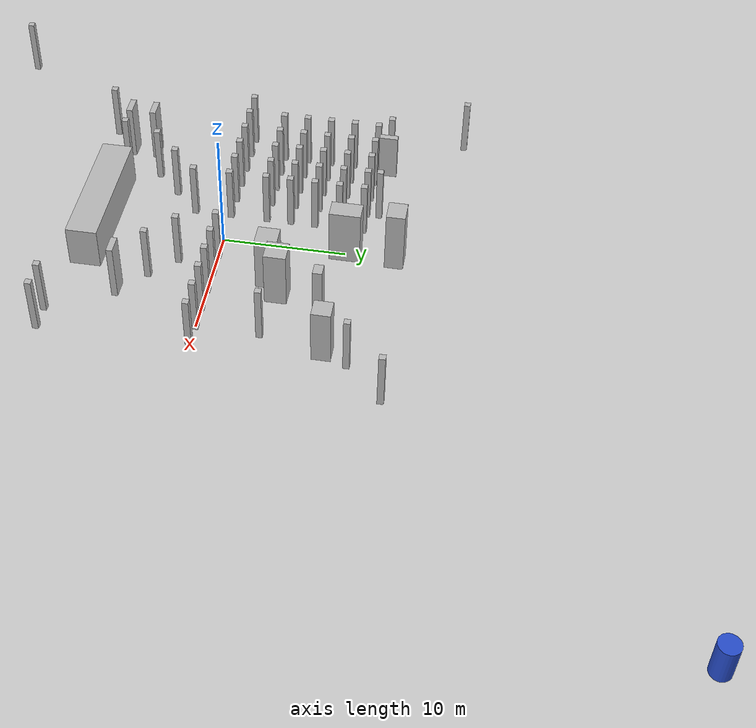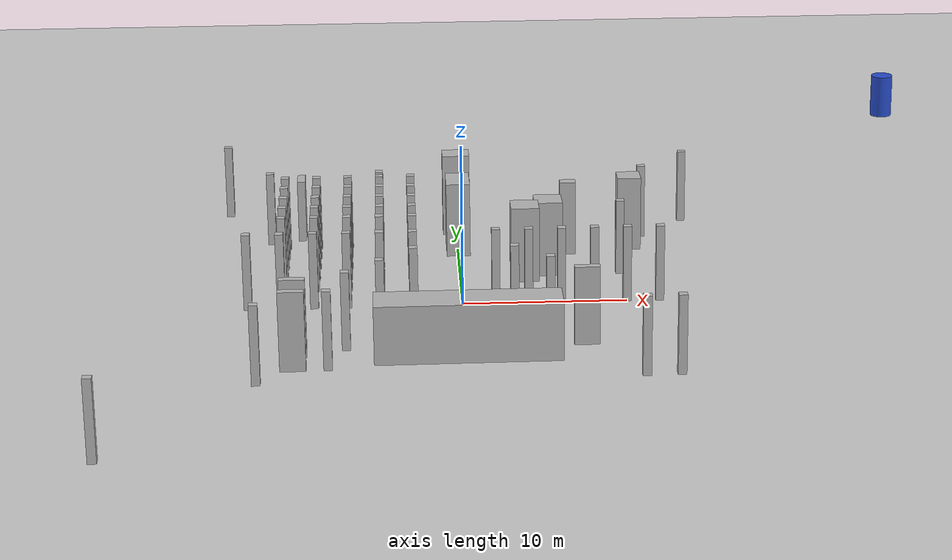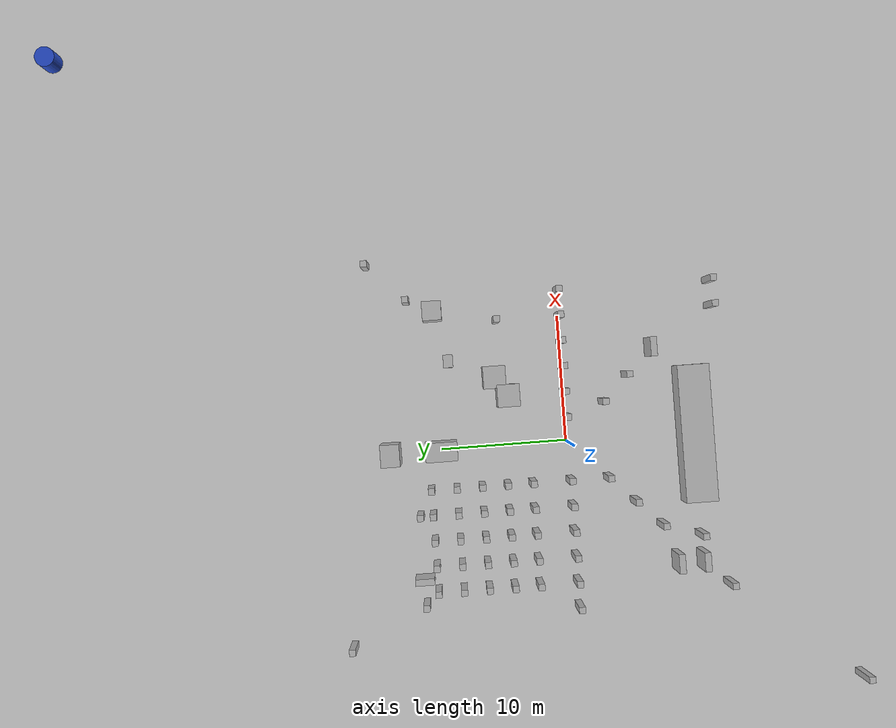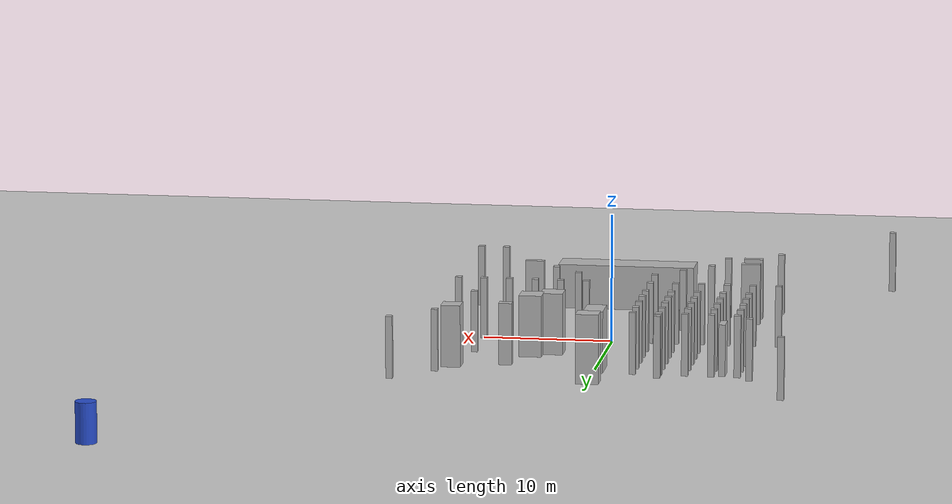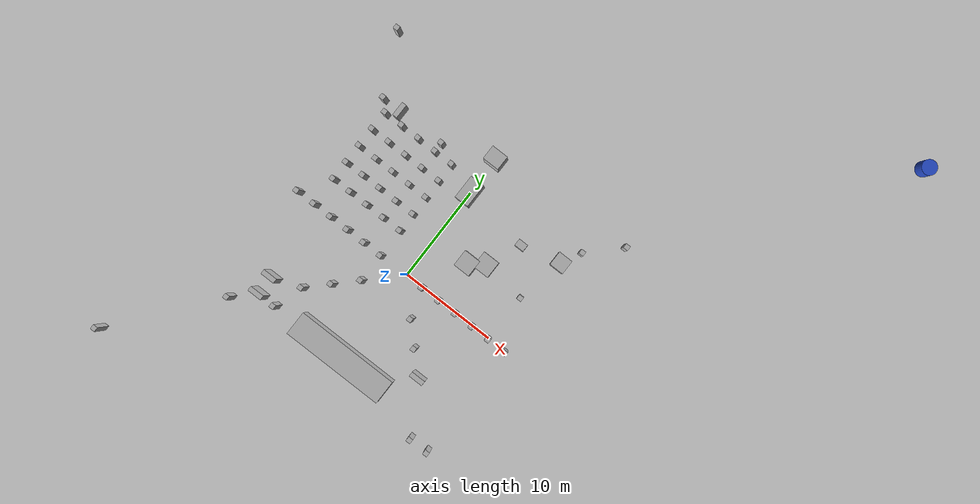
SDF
<sdf version="1.5">
 <world name="default">
  <include><uri>model://sun</uri></include>
  <include><uri>model://ground_plane</uri></include>
  <model name="box0">
   <pose>4.0 4.5 2.4 0 0 0</pose>
   <link name="link">
    <collision name="collision"><geometry><box><size>1.75 1.75 4.8</size></box></geometry></collision>
    <visual name="visual"><geometry><box><size>1.75 1.75 4.8</size></box></geometry></visual>
   </link>
  </model>
  <model name="box1">
   <pose>5.5 5.5 2.4 0 0 0</pose>
   <link name="link">
    <collision name="collision"><geometry><box><size>1.75 1.75 4.8</size></box></geometry></collision>
    <visual name="visual"><geometry><box><size>1.75 1.75 4.8</size></box></geometry></visual>
   </link>
  </model>
  <model name="box2">
   <pose>7.0 9.0 2.4 0 0 0</pose>
   <link name="link">
    <collision name="collision"><geometry><box><size>1.0 0.75 4.8</size></box></geometry></collision>
    <visual name="visual"><geometry><box><size>1.0 0.75 4.8</size></box></geometry></visual>
   </link>
  </model>
  <model name="box3">
   <pose>11.00 10.00 2.4 0 0 0</pose>
   <link name="link">
    <collision name="collision"><geometry><box><size>1.5 1.5 4.8</size></box></geometry></collision>
    <visual name="visual"><geometry><box><size>1.5 1.5 4.8</size></box></geometry></visual>
   </link>
  </model>
  <model name="box4">
   <pose>12.00 12.00 2.4 0 0 0</pose>
   <link name="link">
    <collision name="collision"><geometry><box><size>0.5 0.5 4.8</size></box></geometry></collision>
    <visual name="visual"><geometry><box><size>0.5 0.5 4.8</size></box></geometry></visual>
   </link>
  </model>
  <model name="box5">
   <pose>-12.00 -12.00 2.4 0 0 0</pose>
   <link name="link">
    <collision name="collision"><geometry><box><size>0.5 0.5 4.8</size></box></geometry></collision>
    <visual name="visual"><geometry><box><size>0.5 0.5 4.8</size></box></geometry></visual>
   </link>
  </model>
  <model name="box6">
   <pose>-12.00 12.00 2.4 0 0 0</pose>
   <link name="link">
    <collision name="collision"><geometry><box><size>0.5 0.5 4.8</size></box></geometry></collision>
    <visual name="visual"><geometry><box><size>0.5 0.5 4.8</size></box></geometry></visual>
   </link>
  </model>
  <model name="box7">
   <pose>12.00 -12.00 2.4 0 0 0</pose>
   <link name="link">
    <collision name="collision"><geometry><box><size>0.5 0.5 4.8</size></box></geometry></collision>
    <visual name="visual"><geometry><box><size>0.5 0.5 4.8</size></box></geometry></visual>
   </link>
  </model>
  <model name="box8">
   <pose>-5.00 12.00 2.4 0 0 0</pose>
   <link name="link">
    <collision name="collision"><geometry><box><size>0.5 0.5 4.8</size></box></geometry></collision>
    <visual name="visual"><geometry><box><size>0.5 0.5 4.8</size></box></geometry></visual>
   </link>
  </model>
  <model name="box9">
   <pose>15.00 15.00 2.4 0 0 0</pose>
   <link name="link">
    <collision name="collision"><geometry><box><size>0.5 0.5 4.8</size></box></geometry></collision>
    <visual name="visual"><geometry><box><size>0.5 0.5 4.8</size></box></geometry></visual>
   </link>
  </model>
  <model name="box10">
   <pose>10.00 -12.00 2.4 0 0 0</pose>
   <link name="link">
    <collision name="collision"><geometry><box><size>0.5 0.5 4.8</size></box></geometry></collision>
    <visual name="visual"><geometry><box><size>0.5 0.5 4.8</size></box></geometry></visual>
   </link>
  </model>
  <model name="box11">
   <pose>7.00 -7.00 2.4 0 0 0</pose>
   <link name="link">
    <collision name="collision"><geometry><box><size>1.5 0.5 4.8</size></box></geometry></collision>
    <visual name="visual"><geometry><box><size>1.5 0.5 4.8</size></box></geometry></visual>
   </link>
  </model>
  <model name="box12">
   <pose>-10.00 12.00 2.4 0 0 0</pose>
   <link name="link">
    <collision name="collision"><geometry><box><size>0.5 1.5 4.0</size></box></geometry></collision>
    <visual name="visual"><geometry><box><size>0.5 1.5 4.0</size></box></geometry></visual>
   </link>
  </model>
  <model name="box13">
   <pose>10.00 5.00 2.4 0 0 0</pose>
   <link name="link">
    <collision name="collision"><geometry><box><size>0.5 0.5 4.8</size></box></geometry></collision>
    <visual name="visual"><geometry><box><size>0.5 0.5 4.8</size></box></geometry></visual>
   </link>
  </model>
  <model name="box14">
   <pose>-20.00 -22.00 2.4 0 0 0</pose>
   <link name="link">
    <collision name="collision"><geometry><box><size>0.5 0.5 4.8</size></box></geometry></collision>
    <visual name="visual"><geometry><box><size>0.5 0.5 4.8</size></box></geometry></visual>
   </link>
  </model>
  <model name="box15">
   <pose>-15.00 18.00 2.4 0 0 0</pose>
   <link name="link">
    <collision name="collision"><geometry><box><size>0.5 0.5 4.8</size></box></geometry></collision>
    <visual name="visual"><geometry><box><size>0.5 0.5 4.8</size></box></geometry></visual>
   </link>
  </model>
  <model name="box16">
   <pose>2.00 0.00 2.4 0 0 0</pose>
   <link name="link">
    <collision name="collision"><geometry><box><size>0.5 0.5 4.8</size></box></geometry></collision>
    <visual name="visual"><geometry><box><size>0.5 0.5 4.8</size></box></geometry></visual>
   </link>
  </model>
  <model name="box17">
   <pose>4.00 0.00 2.4 0 0 0</pose>
   <link name="link">
    <collision name="collision"><geometry><box><size>0.5 0.5 4.8</size></box></geometry></collision>
    <visual name="visual"><geometry><box><size>0.5 0.5 4.8</size></box></geometry></visual>
   </link>
  </model>
  <model name="box18">
   <pose>6.00 0.00 2.4 0 0 0</pose>
   <link name="link">
    <collision name="collision"><geometry><box><size>0.5 0.5 4.8</size></box></geometry></collision>
    <visual name="visual"><geometry><box><size>0.5 0.5 4.8</size></box></geometry></visual>
   </link>
  </model>
  <model name="box19">
   <pose>8.00 0.00 2.4 0 0 0</pose>
   <link name="link">
    <collision name="collision"><geometry><box><size>0.5 0.5 4.8</size></box></geometry></collision>
    <visual name="visual"><geometry><box><size>0.5 0.5 4.8</size></box></geometry></visual>
   </link>
  </model>
  <model name="box20">
   <pose>10.00 0.00 2.4 0 0 0</pose>
   <link name="link">
    <collision name="collision"><geometry><box><size>0.5 0.5 4.8</size></box></geometry></collision>
    <visual name="visual"><geometry><box><size>0.5 0.5 4.8</size></box></geometry></visual>
   </link>
  </model>
  <model name="box21">
   <pose>12.00 0.00 2.4 0 0 0</pose>
   <link name="link">
    <collision name="collision"><geometry><box><size>0.5 0.5 4.8</size></box></geometry></collision>
    <visual name="visual"><geometry><box><size>0.5 0.5 4.8</size></box></geometry></visual>
   </link>
  </model>
  <model name="box22">
   <pose>-10.00 -10.00 2.4 0 0 0</pose>
   <link name="link">
    <collision name="collision"><geometry><box><size>1.5 0.5 4.8</size></box></geometry></collision>
    <visual name="visual"><geometry><box><size>1.5 0.5 4.8</size></box></geometry></visual>
   </link>
  </model>
  <model name="box23">
   <pose>-8.00 -10.00 2.4 0 0 0</pose>
   <link name="link">
    <collision name="collision"><geometry><box><size>0.5 0.5 4.8</size></box></geometry></collision>
    <visual name="visual"><geometry><box><size>0.5 0.5 4.8</size></box></geometry></visual>
   </link>
  </model>
  <model name="box24">
   <pose>-10.00 -8.00 2.4 0 0 0</pose>
   <link name="link">
    <collision name="collision"><geometry><box><size>1.5 0.5 4.8</size></box></geometry></collision>
    <visual name="visual"><geometry><box><size>1.5 0.5 4.8</size></box></geometry></visual>
   </link>
  </model>
  <model name="box25">
   <pose>-7.00 -7.00 2.4 0 0 0</pose>
   <link name="link">
    <collision name="collision"><geometry><box><size>0.5 0.5 4.8</size></box></geometry></collision>
    <visual name="visual"><geometry><box><size>0.5 0.5 4.8</size></box></geometry></visual>
   </link>
  </model>
  <model name="box26">
   <pose>-5.00 -5.00 2.4 0 0 0</pose>
   <link name="link">
    <collision name="collision"><geometry><box><size>0.5 0.5 4.8</size></box></geometry></collision>
    <visual name="visual"><geometry><box><size>0.5 0.5 4.8</size></box></geometry></visual>
   </link>
  </model>
  <model name="box27">
   <pose>-3.00 -3.00 2.4 0 0 0</pose>
   <link name="link">
    <collision name="collision"><geometry><box><size>0.5 0.5 4.8</size></box></geometry></collision>
    <visual name="visual"><geometry><box><size>0.5 0.5 4.8</size></box></geometry></visual>
   </link>
  </model>
  <model name="box28">
   <pose>5.00 -5.00 2.4 0 0 0</pose>
   <link name="link">
    <collision name="collision"><geometry><box><size>0.5 0.5 4.8</size></box></geometry></collision>
    <visual name="visual"><geometry><box><size>0.5 0.5 4.8</size></box></geometry></visual>
   </link>
  </model>
  <model name="box29">
   <pose>3.00 -3.00 2.4 0 0 0</pose>
   <link name="link">
    <collision name="collision"><geometry><box><size>0.5 0.5 4.8</size></box></geometry></collision>
    <visual name="visual"><geometry><box><size>0.5 0.5 4.8</size></box></geometry></visual>
   </link>
  </model>
  <model name="box30">
   <pose>-3.00 0.00 2.4 0 0 0</pose>
   <link name="link">
    <collision name="collision"><geometry><box><size>0.5 0.5 4.8</size></box></geometry></collision>
    <visual name="visual"><geometry><box><size>0.5 0.5 4.8</size></box></geometry></visual>
   </link>
  </model>
  <model name="box31">
   <pose>-5.00 0.00 2.4 0 0 0</pose>
   <link name="link">
    <collision name="collision"><geometry><box><size>0.5 0.5 4.8</size></box></geometry></collision>
    <visual name="visual"><geometry><box><size>0.5 0.5 4.8</size></box></geometry></visual>
   </link>
  </model>
  <model name="box32">
   <pose>-7.00 0.00 2.4 0 0 0</pose>
   <link name="link">
    <collision name="collision"><geometry><box><size>0.5 0.5 4.8</size></box></geometry></collision>
    <visual name="visual"><geometry><box><size>0.5 0.5 4.8</size></box></geometry></visual>
   </link>
  </model>
  <model name="box33">
   <pose>-9.00 0.00 2.4 0 0 0</pose>
   <link name="link">
    <collision name="collision"><geometry><box><size>0.5 0.5 4.8</size></box></geometry></collision>
    <visual name="visual"><geometry><box><size>0.5 0.5 4.8</size></box></geometry></visual>
   </link>
  </model>
  <model name="box34">
   <pose>-11.00 0.00 2.4 0 0 0</pose>
   <link name="link">
    <collision name="collision"><geometry><box><size>0.5 0.5 4.8</size></box></geometry></collision>
    <visual name="visual"><geometry><box><size>0.5 0.5 4.8</size></box></geometry></visual>
   </link>
  </model>
  <model name="box35">
   <pose>-13.00 0.00 2.4 0 0 0</pose>
   <link name="link">
    <collision name="collision"><geometry><box><size>0.5 0.5 4.8</size></box></geometry></collision>
    <visual name="visual"><geometry><box><size>0.5 0.5 4.8</size></box></geometry></visual>
   </link>
  </model>
  <model name="box36">
   <pose>-3.00 3.00 2.4 0 0 0</pose>
   <link name="link">
    <collision name="collision"><geometry><box><size>0.5 0.5 4.8</size></box></geometry></collision>
    <visual name="visual"><geometry><box><size>0.5 0.5 4.8</size></box></geometry></visual>
   </link>
  </model>
  <model name="box37">
   <pose>-3.00 5.00 2.4 0 0 0</pose>
   <link name="link">
    <collision name="collision"><geometry><box><size>0.5 0.5 4.8</size></box></geometry></collision>
    <visual name="visual"><geometry><box><size>0.5 0.5 4.8</size></box></geometry></visual>
   </link>
  </model>
  <model name="box38">
   <pose>-3.00 7.00 2.4 0 0 0</pose>
   <link name="link">
    <collision name="collision"><geometry><box><size>0.5 0.5 4.8</size></box></geometry></collision>
    <visual name="visual"><geometry><box><size>0.5 0.5 4.8</size></box></geometry></visual>
   </link>
  </model>
  <model name="box39">
   <pose>-3.00 9.00 2.4 0 0 0</pose>
   <link name="link">
    <collision name="collision"><geometry><box><size>0.5 0.5 4.8</size></box></geometry></collision>
    <visual name="visual"><geometry><box><size>0.5 0.5 4.8</size></box></geometry></visual>
   </link>
  </model>
  <model name="box40">
   <pose>-3.00 11.00 2.4 0 0 0</pose>
   <link name="link">
    <collision name="collision"><geometry><box><size>0.5 0.5 4.8</size></box></geometry></collision>
    <visual name="visual"><geometry><box><size>0.5 0.5 4.8</size></box></geometry></visual>
   </link>
  </model>
  <model name="box41">
   <pose>-5.00 3.00 2.4 0 0 0</pose>
   <link name="link">
    <collision name="collision"><geometry><box><size>0.5 0.5 4.8</size></box></geometry></collision>
    <visual name="visual"><geometry><box><size>0.5 0.5 4.8</size></box></geometry></visual>
   </link>
  </model>
  <model name="box42">
   <pose>-5.00 5.00 2.4 0 0 0</pose>
   <link name="link">
    <collision name="collision"><geometry><box><size>0.5 0.5 4.8</size></box></geometry></collision>
    <visual name="visual"><geometry><box><size>0.5 0.5 4.8</size></box></geometry></visual>
   </link>
  </model>
  <model name="box43">
   <pose>-5.00 7.00 2.4 0 0 0</pose>
   <link name="link">
    <collision name="collision"><geometry><box><size>0.5 0.5 4.8</size></box></geometry></collision>
    <visual name="visual"><geometry><box><size>0.5 0.5 4.8</size></box></geometry></visual>
   </link>
  </model>
  <model name="box44">
   <pose>-5.00 9.00 2.4 0 0 0</pose>
   <link name="link">
    <collision name="collision"><geometry><box><size>0.5 0.5 4.8</size></box></geometry></collision>
    <visual name="visual"><geometry><box><size>0.5 0.5 4.8</size></box></geometry></visual>
   </link>
  </model>
  <model name="box45">
   <pose>-5.00 11.00 2.4 0 0 0</pose>
   <link name="link">
    <collision name="collision"><geometry><box><size>0.5 0.5 4.8</size></box></geometry></collision>
    <visual name="visual"><geometry><box><size>0.5 0.5 4.8</size></box></geometry></visual>
   </link>
  </model>
  <model name="box46">
   <pose>-7.00 3.00 2.4 0 0 0</pose>
   <link name="link">
    <collision name="collision"><geometry><box><size>0.5 0.5 4.8</size></box></geometry></collision>
    <visual name="visual"><geometry><box><size>0.5 0.5 4.8</size></box></geometry></visual>
   </link>
  </model>
  <model name="box47">
   <pose>-7.00 5.00 2.4 0 0 0</pose>
   <link name="link">
    <collision name="collision"><geometry><box><size>0.5 0.5 4.8</size></box></geometry></collision>
    <visual name="visual"><geometry><box><size>0.5 0.5 4.8</size></box></geometry></visual>
   </link>
  </model>
  <model name="box48">
   <pose>-7.00 7.00 2.4 0 0 0</pose>
   <link name="link">
    <collision name="collision"><geometry><box><size>0.5 0.5 4.8</size></box></geometry></collision>
    <visual name="visual"><geometry><box><size>0.5 0.5 4.8</size></box></geometry></visual>
   </link>
  </model>
  <model name="box49">
   <pose>-7.00 9.00 2.4 0 0 0</pose>
   <link name="link">
    <collision name="collision"><geometry><box><size>0.5 0.5 4.8</size></box></geometry></collision>
    <visual name="visual"><geometry><box><size>0.5 0.5 4.8</size></box></geometry></visual>
   </link>
  </model>
  <model name="box50">
   <pose>-7.00 11.00 2.4 0 0 0</pose>
   <link name="link">
    <collision name="collision"><geometry><box><size>0.5 0.5 4.8</size></box></geometry></collision>
    <visual name="visual"><geometry><box><size>0.5 0.5 4.8</size></box></geometry></visual>
   </link>
  </model>
  <model name="box51">
   <pose>-9.00 3.00 2.4 0 0 0</pose>
   <link name="link">
    <collision name="collision"><geometry><box><size>0.5 0.5 4.8</size></box></geometry></collision>
    <visual name="visual"><geometry><box><size>0.5 0.5 4.8</size></box></geometry></visual>
   </link>
  </model>
  <model name="box52">
   <pose>-9.00 5.00 2.4 0 0 0</pose>
   <link name="link">
    <collision name="collision"><geometry><box><size>0.5 0.5 4.8</size></box></geometry></collision>
    <visual name="visual"><geometry><box><size>0.5 0.5 4.8</size></box></geometry></visual>
   </link>
  </model>
  <model name="box53">
   <pose>-9.00 7.00 2.4 0 0 0</pose>
   <link name="link">
    <collision name="collision"><geometry><box><size>0.5 0.5 4.8</size></box></geometry></collision>
    <visual name="visual"><geometry><box><size>0.5 0.5 4.8</size></box></geometry></visual>
   </link>
  </model>
  <model name="box54">
   <pose>-9.00 9.00 2.4 0 0 0</pose>
   <link name="link">
    <collision name="collision"><geometry><box><size>0.5 0.5 4.8</size></box></geometry></collision>
    <visual name="visual"><geometry><box><size>0.5 0.5 4.8</size></box></geometry></visual>
   </link>
  </model>
  <model name="box55">
   <pose>-9.00 11.00 2.4 0 0 0</pose>
   <link name="link">
    <collision name="collision"><geometry><box><size>0.5 0.5 4.8</size></box></geometry></collision>
    <visual name="visual"><geometry><box><size>0.5 0.5 4.8</size></box></geometry></visual>
   </link>
  </model>
  <model name="box56">
   <pose>-11.00 3.00 2.4 0 0 0</pose>
   <link name="link">
    <collision name="collision"><geometry><box><size>0.5 0.5 4.8</size></box></geometry></collision>
    <visual name="visual"><geometry><box><size>0.5 0.5 4.8</size></box></geometry></visual>
   </link>
  </model>
  <model name="box57">
   <pose>-11.00 5.00 2.4 0 0 0</pose>
   <link name="link">
    <collision name="collision"><geometry><box><size>0.5 0.5 4.8</size></box></geometry></collision>
    <visual name="visual"><geometry><box><size>0.5 0.5 4.8</size></box></geometry></visual>
   </link>
  </model>
  <model name="box58">
   <pose>-11.00 7.00 2.4 0 0 0</pose>
   <link name="link">
    <collision name="collision"><geometry><box><size>0.5 0.5 4.8</size></box></geometry></collision>
    <visual name="visual"><geometry><box><size>0.5 0.5 4.8</size></box></geometry></visual>
   </link>
  </model>
  <model name="box59">
   <pose>-11.00 9.00 2.4 0 0 0</pose>
   <link name="link">
    <collision name="collision"><geometry><box><size>0.5 0.5 4.8</size></box></geometry></collision>
    <visual name="visual"><geometry><box><size>0.5 0.5 4.8</size></box></geometry></visual>
   </link>
  </model>
  <model name="box60">
   <pose>-11.00 11.00 2.4 0 0 0</pose>
   <link name="link">
    <collision name="collision"><geometry><box><size>0.5 0.5 4.8</size></box></geometry></collision>
    <visual name="visual"><geometry><box><size>0.5 0.5 4.8</size></box></geometry></visual>
   </link>
  </model>
  <model name="box61">
   <pose>0.00 10.00 2.4 0 0 0</pose>
   <link name="link">
    <collision name="collision"><geometry><box><size>1.5 2.5 4.8</size></box></geometry></collision>
    <visual name="visual"><geometry><box><size>1.5 2.5 4.8</size></box></geometry></visual>
   </link>
  </model>
  <model name="box62">
   <pose>0.00 14.00 2.4 0 0 0</pose>
   <link name="link">
    <collision name="collision"><geometry><box><size>1.75 1.5 5.8</size></box></geometry></collision>
    <visual name="visual"><geometry><box><size>1.75 1.5 5.8</size></box></geometry></visual>
   </link>
  </model>
  <model name="box63">
   <pose>0.00 -10.00 2.4 0 0 0</pose>
   <link name="link">
    <collision name="collision"><geometry><box><size>10.75 2.5 3.5</size></box></geometry></collision>
    <visual name="visual"><geometry><box><size>10.75 2.5 3.5</size></box></geometry></visual>
   </link>
  </model>
  <model name="118">
   <static>0</static>
   <link name="link">
    <inertial>
     <mass>2</mass>
     <inertia><ixx>1.89909</ixx><ixy>0</ixy><ixz>0</ixz><iyy>1.89909</iyy><iyz>0</iyz><izz>0.622758</izz></inertia>
    </inertial>
    <collision name="collision">
     <geometry><cylinder><length>3.08646</length><radius>0.78915</radius></cylinder></geometry>
     <surface><contact><collide_without_contact>1</collide_without_contact></contact></surface>
    </collision>
    <visual name="visual">
     <geometry><cylinder><length>3.08646</length><radius>0.78915</radius></cylinder></geometry>
     <material>
      <script><uri>file://media/materials/scripts/gazebo.material</uri><name>Gazebo/Blue</name></script>
     </material>
    </visual>
    <gravity>0</gravity>
   </link>
   <pose>33.1794 38.8872 1.54323 0 -0 0</pose>
  </model>
 </world>
</sdf>
